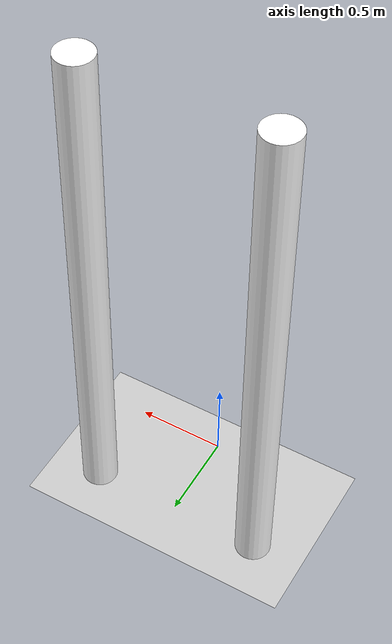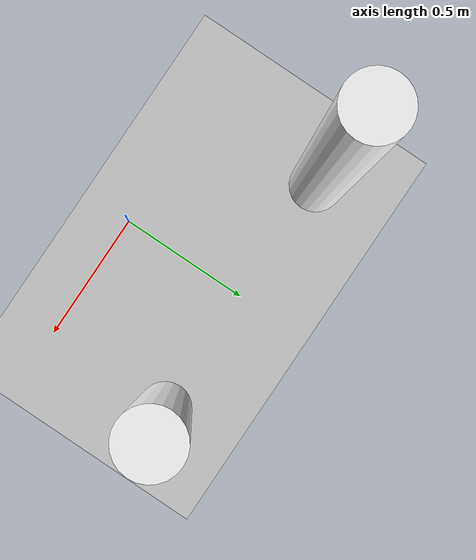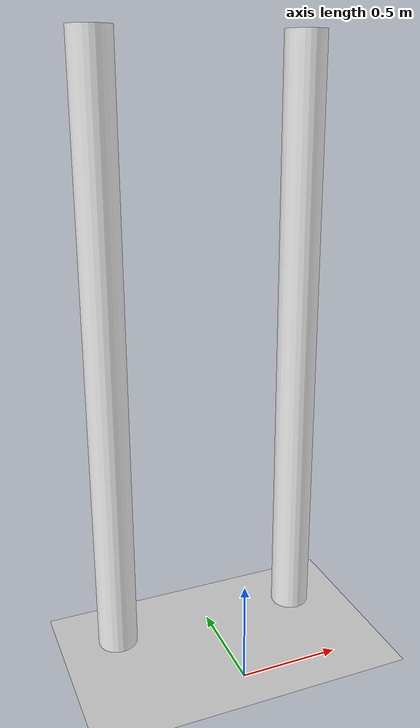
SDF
<?xml version="1.0"?>
<sdf version="1.6">
  <world name="default">
    <!-- physics engine -->
    <physics type="ode">
      <max_step_size>0.001</max_step_size>
      <real_time_factor>1</real_time_factor>
      <real_time_update_rate>1000</real_time_update_rate>
      <magnetic_field>34 0 -36</magnetic_field>
      <gravity>0 0 -9.8</gravity>
    </physics>

    <!-- coordinate -->
    <spherical_coordinates>
      <surface_model>EARTH_WGS84</surface_model>
      <latitude_deg>0</latitude_deg>
      <longitude_deg>0</longitude_deg>
      <elevation>0</elevation>
      <heading_deg>0</heading_deg>
    </spherical_coordinates>

    <!-- ground plane -->
    <include>
      <uri>model://ground_plane</uri>
    </include>

    <!-- sun -->
    <include>
      <uri>model://sun</uri>
    </include>

    <!-- pillar -->
    <include>
      <uri>model://pillar</uri>
      <name>pillar_1</name>
      <pose>-0.5 0.5 1 0 0 0</pose>
    </include>

    <include>
      <uri>model://pillar</uri>
      <name>pillar_2</name>
      <pose>0.5 0.5 1 0 0 0</pose>
    </include>

  </world>
</sdf>

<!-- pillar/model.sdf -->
<sdf version="1.6">
  <model name="pillar">
    <static>true</static>
    <link name="pillar_link">
      <pose>0 0 0.5 0 0 0</pose>
      <collision name="collision">
        <geometry>
          <cylinder>
            <radius>0.1</radius>
            <length>3.0</length>
          </cylinder>
        </geometry>
      </collision>
      <visual name="visual">
        <geometry>
          <cylinder>
            <radius>0.1</radius>
            <length>3.0</length>
          </cylinder>
        </geometry>
        <material>
          <ambient>1 1 1 1</ambient>
        </material>
      </visual>
    </link>
  </model>
</sdf>
